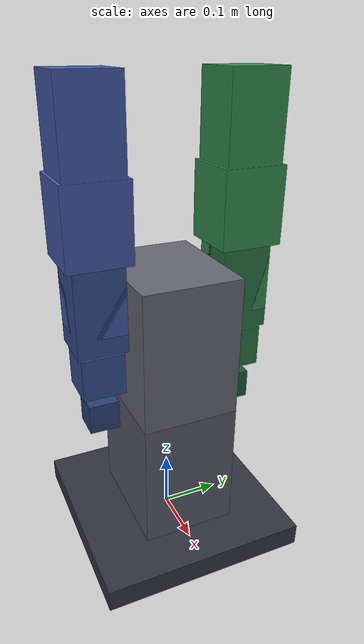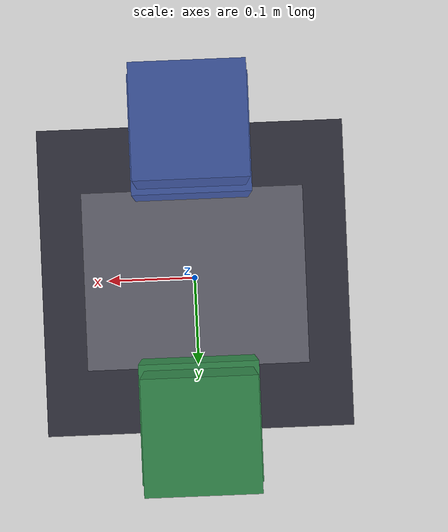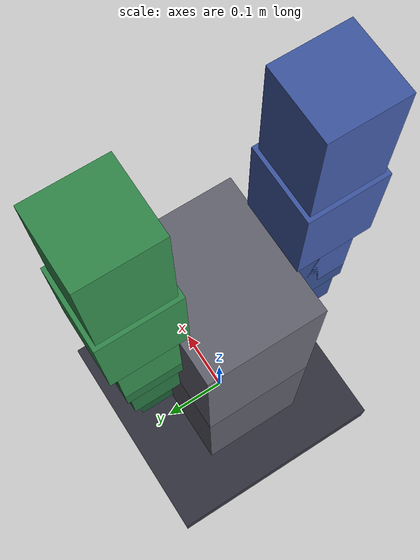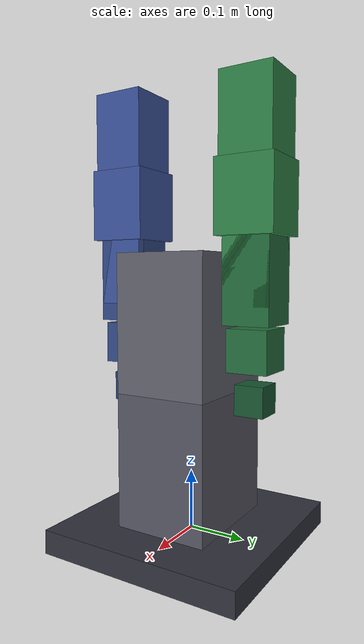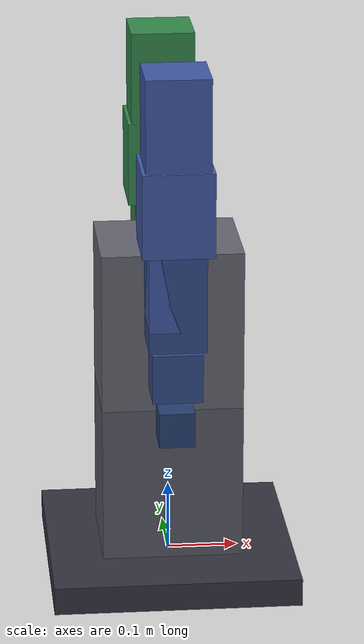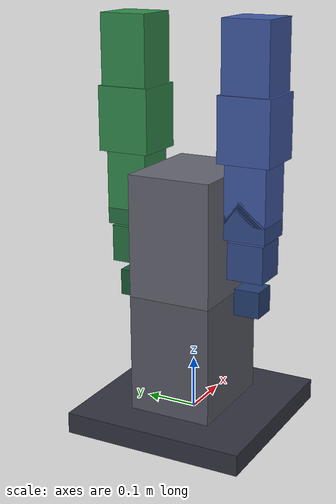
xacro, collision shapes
<?xml version="1.0"?>
<robot xmlns:xacro="http://www.ros.org/wiki/xacro" name="robot">
  <!-- RS03 nominal caps (from robot.yaml actuators.rs03) -->
  <xacro:property name="effort_cap" value="60.0"/>
  <xacro:property name="velocity_cap" value="50.0"/>
  <xacro:property name="joint_damping" value="0.3"/>
  <xacro:property name="joint_friction" value="0.08"/>
  <xacro:property name="k_pos" value="15.0"/>
  <xacro:property name="k_vel" value="10.0"/>

  <xacro:macro name="box_inertial" params="m x y z">
    <inertial>
      <origin xyz="0 0 0" rpy="0 0 0"/>
      <mass value="${m}"/>
      <inertia
        ixx="${m * (y*y + z*z) / 12.0}"
        ixy="0.0"
        ixz="0.0"
        iyy="${m * (x*x + z*z) / 12.0}"
        iyz="0.0"
        izz="${m * (x*x + y*y) / 12.0}"/>
    </inertial>
  </xacro:macro>

  <xacro:macro name="box_link" params="name sx sy sz rgba mass">
    <link name="${name}">
      <visual>
        <origin xyz="0 0 0" rpy="0 0 0"/>
        <geometry>
          <box size="${sx} ${sy} ${sz}"/>
        </geometry>
        <material name="${name}_mat">
          <color rgba="${rgba}"/>
        </material>
      </visual>
      <collision>
        <origin xyz="0 0 0" rpy="0 0 0"/>
        <geometry>
          <box size="${sx} ${sy} ${sz}"/>
        </geometry>
      </collision>
      <xacro:box_inertial m="${mass}" x="${sx}" y="${sy}" z="${sz}"/>
    </link>
  </xacro:macro>

  <xacro:macro name="mesh_link" params="name mesh sx sy sz rgba mass mesh_xyz:='0 0 0' mesh_rpy:='0 0 0' mesh_scale:='1 1 1'">
    <link name="${name}">
      <visual>
        <origin xyz="${mesh_xyz}" rpy="${mesh_rpy}"/>
        <geometry>
          <mesh filename="package://description/meshes/${mesh}" scale="${mesh_scale}"/>
        </geometry>
        <material name="${name}_mat">
          <color rgba="${rgba}"/>
        </material>
      </visual>
      <collision>
        <origin xyz="0 0 0" rpy="0 0 0"/>
        <geometry>
          <box size="${sx} ${sy} ${sz}"/>
        </geometry>
      </collision>
      <xacro:box_inertial m="${mass}" x="${sx}" y="${sy}" z="${sz}"/>
    </link>
  </xacro:macro>

  <!-- Macro: revolute joint with hard limits, dynamics, soft safety band (~0.12 rad inside hard stops) -->
  <xacro:macro name="robot_revolute" params="name parent child axis lower upper soft_lower soft_upper origin_xyz origin_rpy">
    <joint name="${name}" type="revolute">
      <origin xyz="${origin_xyz}" rpy="${origin_rpy}"/>
      <parent link="${parent}"/>
      <child link="${child}"/>
      <axis xyz="${axis}"/>
      <limit lower="${lower}" upper="${upper}" effort="${effort_cap}" velocity="${velocity_cap}"/>
      <dynamics damping="${joint_damping}" friction="${joint_friction}"/>
      <safety_controller
        k_position="${k_pos}"
        k_velocity="${k_vel}"
        soft_lower_limit="${soft_lower}"
        soft_upper_limit="${soft_upper}"/>
    </joint>
  </xacro:macro>

  <!-- Root -->
  <xacro:box_link name="base_link" sx="0.35" sy="0.35" sz="0.04" rgba="0.2 0.2 0.25 1" mass="2.0"/>

  <!-- Torso lower half (fixed to base); total torso height ~0.46 m from robot.yaml -->
  <xacro:box_link name="torso_lower_link" sx="0.20" sy="0.16" sz="0.23" rgba="0.35 0.35 0.4 1" mass="8.0"/>

  <joint name="base_to_torso_lower" type="fixed">
    <origin xyz="0 0 0.13" rpy="0 0 0"/>
    <parent link="base_link"/>
    <child link="torso_lower_link"/>
  </joint>

  <!-- Torso upper (yaw waist); limits from robot.yaml waist.rotation -->
  <xacro:box_link name="torso_upper_link" sx="0.20" sy="0.16" sz="0.23" rgba="0.4 0.4 0.45 1" mass="8.0"/>

  <xacro:robot_revolute
    name="waist_rotation_joint"
    parent="torso_lower_link"
    child="torso_upper_link"
    axis="0 0 1"
    lower="-1.57"
    upper="1.57"
    soft_lower="-1.45"
    soft_upper="1.45"
    origin_xyz="0 0 0.23"
    origin_rpy="0 0 0"/>

  <!--
    Left arm links. Joint origins define kinematics; visual geometry is the
    shoulder housing mesh where available, primitive boxes elsewhere.
  -->
  <xacro:mesh_link name="l_shoulder_pitch_link"
    mesh="shoulder_housing.glb"
    sx="0.08" sy="0.08" sz="0.14" rgba="0.2 0.55 0.3 1" mass="0.6"/>
  <xacro:mesh_link name="l_shoulder_roll_link"
    mesh="shoulder_housing_cap.glb"
    sx="0.10" sy="0.10" sz="0.12" rgba="0.2 0.55 0.3 1" mass="0.5"/>
  <xacro:box_link name="l_upper_arm_link" sx="0.09" sy="0.09" sz="0.22" rgba="0.2 0.55 0.3 1" mass="0.7"/>
  <xacro:box_link name="l_forearm_link" sx="0.08" sy="0.08" sz="0.20" rgba="0.15 0.45 0.25 1" mass="0.5"/>
  <xacro:box_link name="l_lower_arm_yaw_link" sx="0.07" sy="0.07" sz="0.07" rgba="0.15 0.45 0.25 1" mass="0.35"/>
  <xacro:box_link name="l_arm_tip" sx="0.05" sy="0.05" sz="0.05" rgba="0.1 0.35 0.2 1" mass="0.15"/>

  <!-- arm_left from robot.yaml -->
  <xacro:robot_revolute
    name="l_shoulder_pitch_joint"
    parent="torso_upper_link"
    child="l_shoulder_pitch_link"
    axis="0 1 0"
    lower="-1.57"
    upper="3.14"
    soft_lower="-1.45"
    soft_upper="3.02"
    origin_xyz="0 0.12 0.10"
    origin_rpy="0 0 0"/>

  <xacro:robot_revolute
    name="l_shoulder_roll_joint"
    parent="l_shoulder_pitch_link"
    child="l_shoulder_roll_link"
    axis="1 0 0"
    lower="0.0"
    upper="3.14"
    soft_lower="0.12"
    soft_upper="3.02"
    origin_xyz="0 0 0.10"
    origin_rpy="0 0 0"/>

  <xacro:robot_revolute
    name="l_upper_arm_yaw_joint"
    parent="l_shoulder_roll_link"
    child="l_upper_arm_link"
    axis="0 0 1"
    lower="-1.57"
    upper="1.57"
    soft_lower="-1.45"
    soft_upper="1.45"
    origin_xyz="0 0 0.08"
    origin_rpy="0 0 0"/>

  <xacro:robot_revolute
    name="l_elbow_pitch_joint"
    parent="l_upper_arm_link"
    child="l_forearm_link"
    axis="0 1 0"
    lower="0.0"
    upper="2.36"
    soft_lower="0.12"
    soft_upper="2.24"
    origin_xyz="0 0 -0.18"
    origin_rpy="0 0 0"/>

  <xacro:robot_revolute
    name="l_lower_arm_yaw_joint"
    parent="l_forearm_link"
    child="l_lower_arm_yaw_link"
    axis="0 0 1"
    lower="-1.57"
    upper="1.57"
    soft_lower="-1.45"
    soft_upper="1.45"
    origin_xyz="0 0 -0.14"
    origin_rpy="0 0 0"/>

  <joint name="l_lower_arm_yaw_to_tip" type="fixed">
    <origin xyz="0 0 -0.08" rpy="0 0 0"/>
    <parent link="l_lower_arm_yaw_link"/>
    <child link="l_arm_tip"/>
  </joint>

  <!-- Right arm: mirror of left, with the shoulder housing rotated 180 deg about Z. -->
  <xacro:mesh_link name="r_shoulder_pitch_link"
    mesh="shoulder_housing.glb"
    mesh_rpy="0 0 3.14159"
    sx="0.08" sy="0.08" sz="0.14" rgba="0.25 0.35 0.65 1" mass="0.6"/>
  <xacro:mesh_link name="r_shoulder_roll_link"
    mesh="shoulder_housing_cap.glb"
    mesh_rpy="0 0 3.14159"
    sx="0.10" sy="0.10" sz="0.12" rgba="0.25 0.35 0.65 1" mass="0.5"/>
  <xacro:box_link name="r_upper_arm_link" sx="0.09" sy="0.09" sz="0.22" rgba="0.25 0.35 0.65 1" mass="0.7"/>
  <xacro:box_link name="r_forearm_link" sx="0.08" sy="0.08" sz="0.20" rgba="0.2 0.3 0.55 1" mass="0.5"/>
  <xacro:box_link name="r_lower_arm_yaw_link" sx="0.07" sy="0.07" sz="0.07" rgba="0.2 0.3 0.55 1" mass="0.35"/>
  <xacro:box_link name="r_arm_tip" sx="0.05" sy="0.05" sz="0.05" rgba="0.15 0.25 0.45 1" mass="0.15"/>

  <xacro:robot_revolute
    name="r_shoulder_pitch_joint"
    parent="torso_upper_link"
    child="r_shoulder_pitch_link"
    axis="0 1 0"
    lower="-1.57"
    upper="3.14"
    soft_lower="-1.45"
    soft_upper="3.02"
    origin_xyz="0 -0.12 0.10"
    origin_rpy="0 0 0"/>

  <xacro:robot_revolute
    name="r_shoulder_roll_joint"
    parent="r_shoulder_pitch_link"
    child="r_shoulder_roll_link"
    axis="1 0 0"
    lower="-3.14"
    upper="0.0"
    soft_lower="-3.02"
    soft_upper="-0.12"
    origin_xyz="0 0 0.10"
    origin_rpy="0 0 0"/>

  <xacro:robot_revolute
    name="r_upper_arm_yaw_joint"
    parent="r_shoulder_roll_link"
    child="r_upper_arm_link"
    axis="0 0 1"
    lower="-1.57"
    upper="1.57"
    soft_lower="-1.45"
    soft_upper="1.45"
    origin_xyz="0 0 0.08"
    origin_rpy="0 0 0"/>

  <xacro:robot_revolute
    name="r_elbow_pitch_joint"
    parent="r_upper_arm_link"
    child="r_forearm_link"
    axis="0 1 0"
    lower="-2.36"
    upper="0.0"
    soft_lower="-2.24"
    soft_upper="-0.12"
    origin_xyz="0 0 -0.18"
    origin_rpy="0 0 0"/>

  <xacro:robot_revolute
    name="r_lower_arm_yaw_joint"
    parent="r_forearm_link"
    child="r_lower_arm_yaw_link"
    axis="0 0 1"
    lower="-1.57"
    upper="1.57"
    soft_lower="-1.45"
    soft_upper="1.45"
    origin_xyz="0 0 -0.14"
    origin_rpy="0 0 0"/>

  <joint name="r_lower_arm_yaw_to_tip" type="fixed">
    <origin xyz="0 0 -0.08" rpy="0 0 0"/>
    <parent link="r_lower_arm_yaw_link"/>
    <child link="r_arm_tip"/>
  </joint>

  <ros2_control name="RudySystem" type="system">
    <hardware>
      <plugin>control/TopicLoopbackHardware</plugin>
    </hardware>
    <joint name="l_shoulder_pitch_joint">
      <command_interface name="position"/>
      <state_interface name="position"/>
      <state_interface name="velocity"/>
    </joint>
    <joint name="l_shoulder_roll_joint">
      <command_interface name="position"/>
      <state_interface name="position"/>
      <state_interface name="velocity"/>
    </joint>
    <joint name="l_upper_arm_yaw_joint">
      <command_interface name="position"/>
      <state_interface name="position"/>
      <state_interface name="velocity"/>
    </joint>
    <joint name="l_elbow_pitch_joint">
      <command_interface name="position"/>
      <state_interface name="position"/>
      <state_interface name="velocity"/>
    </joint>
    <joint name="l_lower_arm_yaw_joint">
      <command_interface name="position"/>
      <state_interface name="position"/>
      <state_interface name="velocity"/>
    </joint>
    <joint name="r_shoulder_pitch_joint">
      <command_interface name="position"/>
      <state_interface name="position"/>
      <state_interface name="velocity"/>
    </joint>
    <joint name="r_shoulder_roll_joint">
      <command_interface name="position"/>
      <state_interface name="position"/>
      <state_interface name="velocity"/>
    </joint>
    <joint name="r_upper_arm_yaw_joint">
      <command_interface name="position"/>
      <state_interface name="position"/>
      <state_interface name="velocity"/>
    </joint>
    <joint name="r_elbow_pitch_joint">
      <command_interface name="position"/>
      <state_interface name="position"/>
      <state_interface name="velocity"/>
    </joint>
    <joint name="r_lower_arm_yaw_joint">
      <command_interface name="position"/>
      <state_interface name="position"/>
      <state_interface name="velocity"/>
    </joint>
  </ros2_control>
</robot>
